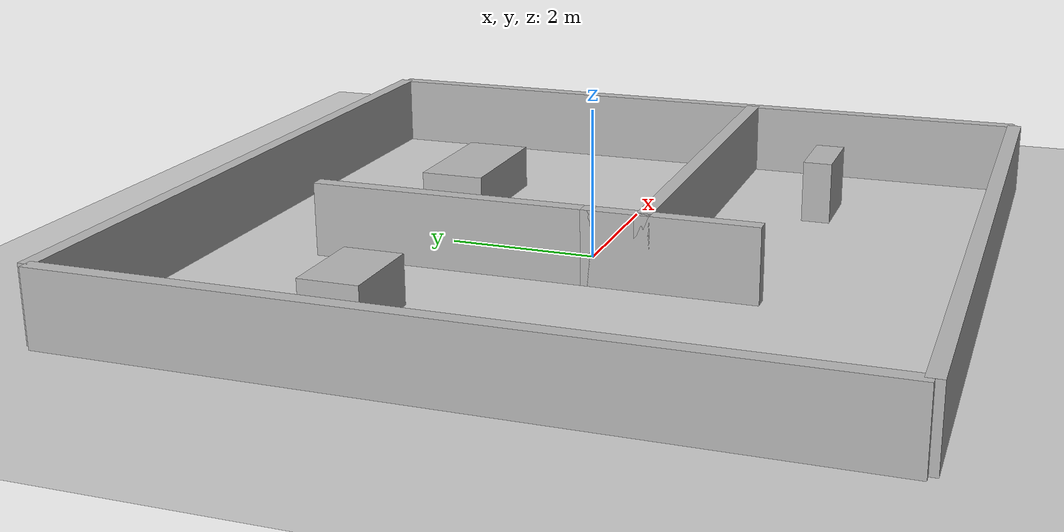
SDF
<?xml version="1.0" ?>

<sdf version="1.6">
  <world name="p2_world">

    <!-- Plugin for simulating physics -->
    <plugin
      filename="gz-sim-physics-system"
      name="gz::sim::systems::Physics">
    </plugin>

    <!-- Plugin for handling user commands -->
    <plugin
      filename="gz-sim-user-commands-system"
      name="gz::sim::systems::UserCommands">
    </plugin>

    <!-- Plugin for broadcasting scene updates -->
    <plugin
      filename="gz-sim-scene-broadcaster-system"
      name="gz::sim::systems::SceneBroadcaster">
    </plugin>

    <!-- Plugin for handling sensors like the LIDAR -->
    <plugin
      filename="gz-sim-sensors-system"
      name="gz::sim::systems::Sensors">
      <render_engine>ogre2</render_engine>
    </plugin>

    <!-- Plugin for IMU -->
    <plugin
      filename="gz-sim-imu-system"
      name="gz::sim::systems::Imu">
    </plugin>

    <!-- Directional light (like reference) -->
    <light type="directional" name="sun">
      <cast_shadows>true</cast_shadows>
      <pose>0 0 10 0 0 0</pose>
      <diffuse>1 1 1 1</diffuse>
      <specular>0.5 0.5 0.5 1</specular>
      <attenuation>
        <range>1000</range>
        <constant>0.9</constant>
        <linear>0.01</linear>
        <quadratic>0.001</quadratic>
      </attenuation>
      <direction>-0.5 0.1 -0.9</direction>
    </light>

    <!-- Explicit ground plane (like reference) -->
    <model name="ground_plane">
      <static>true</static>
      <link name="link">
        <collision name="collision">
          <geometry>
            <plane>
              <normal>0 0 1</normal>
              <size>100 100</size>
            </plane>
          </geometry>
          <surface>
            <friction>
              <ode>
                <mu>0.0</mu>
                <mu2>0.0</mu2>
              </ode>
            </friction>
          </surface>
        </collision>

        <visual name="visual">
          <geometry>
            <plane>
              <normal>0 0 1</normal>
              <size>100 100</size>
            </plane>
          </geometry>
          <material>
            <ambient>0.8 0.8 0.8 1</ambient>
            <diffuse>0.8 0.8 0.8 1</diffuse>
            <specular>0.8 0.8 0.8 1</specular>
          </material>
        </visual>
      </link>
    </model>

    <!-- Outer walls (a big room) -->
    <model name="wall_north">
      <static>true</static>
      <pose>0 5 0.5 0 0 0</pose>
      <link name="link">
        <collision name="col">
          <geometry>
            <box>
              <size>10 0.2 1</size>
            </box>
          </geometry>
        </collision>
        <visual name="vis">
          <geometry>
            <box>
              <size>10 0.2 1</size>
            </box>
          </geometry>
        </visual>
      </link>
    </model>

    <model name="wall_south">
      <static>true</static>
      <pose>0 -5 0.5 0 0 0</pose>
      <link name="link">
        <collision name="col">
          <geometry>
            <box>
              <size>10 0.2 1</size>
            </box>
          </geometry>
        </collision>
        <visual name="vis">
          <geometry>
            <box>
              <size>10 0.2 1</size>
            </box>
          </geometry>
        </visual>
      </link>
    </model>

    <model name="wall_east">
      <static>true</static>
      <pose>5 0 0.5 0 0 0</pose>
      <link name="link">
        <collision name="col">
          <geometry>
            <box>
              <size>0.2 10 1</size>
            </box>
          </geometry>
        </collision>
        <visual name="vis">
          <geometry>
            <box>
              <size>0.2 10 1</size>
            </box>
          </geometry>
        </visual>
      </link>
    </model>

    <model name="wall_west">
      <static>true</static>
      <pose>-5 0 0.5 0 0 0</pose>
      <link name="link">
        <collision name="col">
          <geometry>
            <box>
              <size>0.2 10 1</size>
            </box>
          </geometry>
        </collision>
        <visual name="vis">
          <geometry>
            <box>
              <size>0.2 10 1</size>
            </box>
          </geometry>
        </visual>
      </link>
    </model>

    <!-- Inner walls (make it "home-like") -->
    <model name="wall_inner_1">
      <static>true</static>
      <pose>-1.0 0.5 0.5 0 0 0</pose>
      <link name="link">
        <collision name="col">
          <geometry>
            <box>
              <size>0.2 6 1</size>
            </box>
          </geometry>
        </collision>
        <visual name="vis">
          <geometry>
            <box>
              <size>0.2 6 1</size>
            </box>
          </geometry>
        </visual>
      </link>
    </model>

    <model name="wall_inner_2">
      <static>true</static>
      <pose>2.0 -1.0 0.5 0 0 0</pose>
      <link name="link">
        <collision name="col">
          <geometry>
            <box>
              <size>6 0.2 1</size>
            </box>
          </geometry>
        </collision>
        <visual name="vis">
          <geometry>
            <box>
              <size>6 0.2 1</size>
            </box>
          </geometry>
        </visual>
      </link>
    </model>

    <!-- "Furniture" obstacles -->
    <model name="table">
      <static>true</static>
      <pose>-3 2 0.25 0 0 0</pose>
      <link name="link">
        <collision name="col">
          <geometry>
            <box>
              <size>1.2 0.8 0.8</size>
            </box>
          </geometry>
        </collision>
        <visual name="vis">
          <geometry>
            <box>
              <size>1.2 0.8 0.8</size>
            </box>
          </geometry>
        </visual>
      </link>
    </model>

    <model name="sofa">
      <static>true</static>
      <pose>2.0 2.5 0.25 0 0 0</pose>
      <link name="link">
        <collision name="col">
          <geometry>
            <box>
              <size>1.8 0.9 0.7</size>
            </box>
          </geometry>
        </collision>
        <visual name="vis">
          <geometry>
            <box>
              <size>1.8 0.9 0.7</size>
            </box>
          </geometry>
        </visual>
      </link>
    </model>

    <model name="cabinet">
      <static>true</static>
      <pose>3 -2.5 0.35 0 0 0</pose>
      <link name="link">
        <collision name="col">
          <geometry>
            <box>
              <size>1.0 0.4 1.0</size>
            </box>
          </geometry>
        </collision>
        <visual name="vis">
          <geometry>
            <box>
              <size>1.0 0.4 1.0</size>
            </box>
          </geometry>
        </visual>
      </link>
    </model>

    <!-- A couple of skinny "door posts" for visual cues -->
    <model name="door_post_left">
      <static>true</static>
      <pose>-1.0 -1.0 0.5 0 0 0</pose>
      <link name="link">
        <collision name="col">
          <geometry>
            <box>
              <size>0.2 0.2 1</size>
            </box>
          </geometry>
        </collision>
        <visual name="vis">
          <geometry>
            <box>
              <size>0.2 0.2 1</size>
            </box>
          </geometry>
        </visual>
      </link>
    </model>

    <model name="door_post_right">
      <static>true</static>
      <pose>-1.0 -0.3 0.5 0 0 0</pose>
      <link name="link">
        <collision name="col">
          <geometry>
            <box>
              <size>0.2 0.2 1</size>
            </box>
          </geometry>
        </collision>
        <visual name="vis">
          <geometry>
            <box>
              <size>0.2 0.2 1</size>
            </box>
          </geometry>
        </visual>
      </link>
    </model>

  </world>
</sdf>
